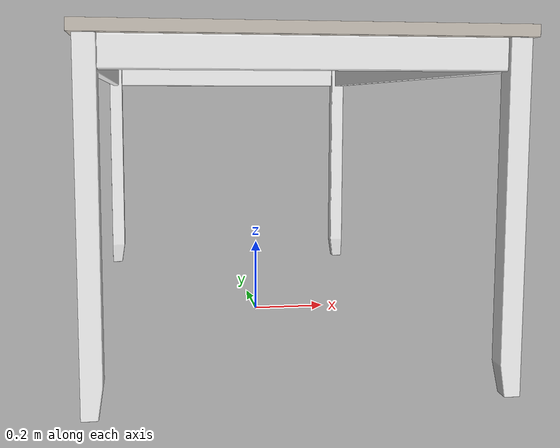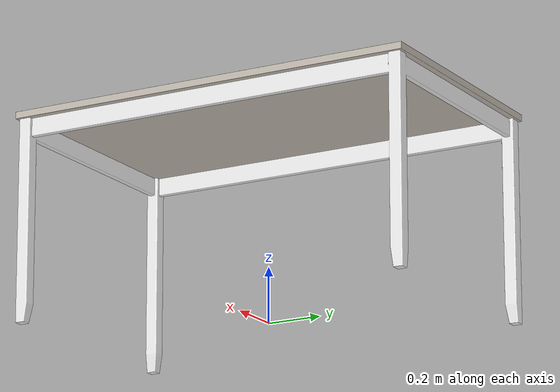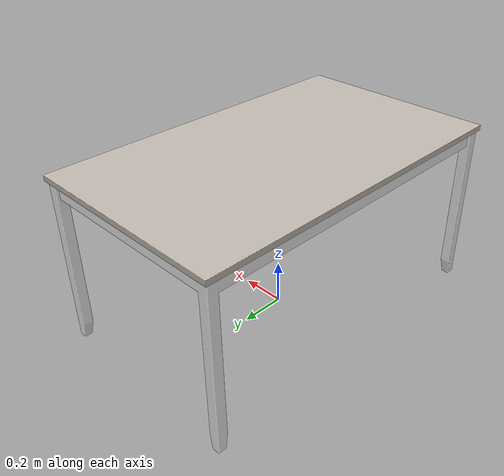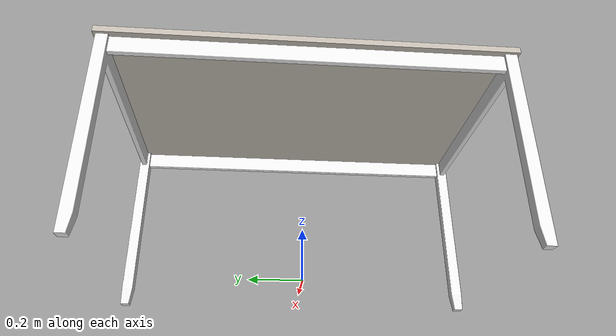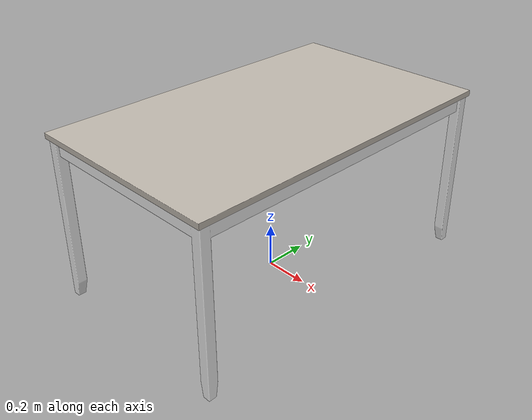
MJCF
<mujoco model="EastRural_Table">
  <default>
    <default class="visual">
      <geom group="2" type="mesh" contype="0" conaffinity="0"/>
    </default>
    <default class="collision">
      <geom group="3" type="mesh"/>
    </default>
  </default>
  <asset>
    <texture type="2d" name="ER_TableTop_BaseColor" file="ER_TableTop_BaseColor.png"/>
    <material name="TableTop" texture="ER_TableTop_BaseColor" specular="0.5" shininess="0.5"/>
    <texture type="2d" name="ER_Table_WhiteWood_BaseColor" file="ER_Table_WhiteWood_BaseColor.png"/>
    <material name="WhiteWood" texture="ER_Table_WhiteWood_BaseColor" specular="0.5" shininess="0.5"/>
    <mesh file="EastRural_Table_0.obj"/>
    <mesh file="EastRural_Table_1.obj"/>
  </asset>
  <worldbody>
    <body name="EastRural_Table">
      <geom mesh="EastRural_Table_0" material="WhiteWood" class="visual"/>
      <geom mesh="EastRural_Table_1" material="TableTop" class="visual"/>
      <geom mesh="EastRural_Table_0" class="collision"/>
      <geom mesh="EastRural_Table_1" class="collision"/>
    </body>
  </worldbody>
</mujoco>
